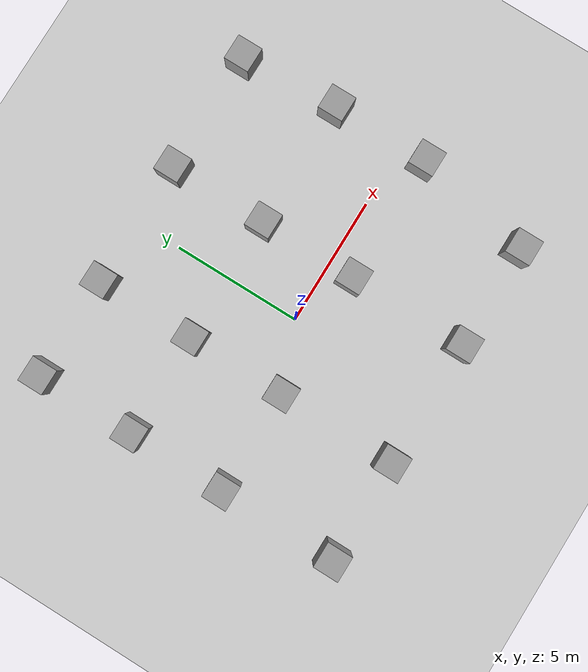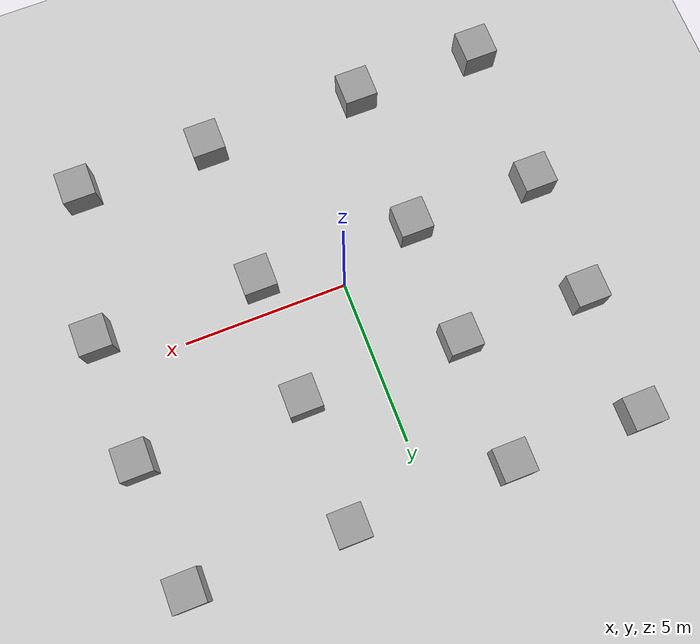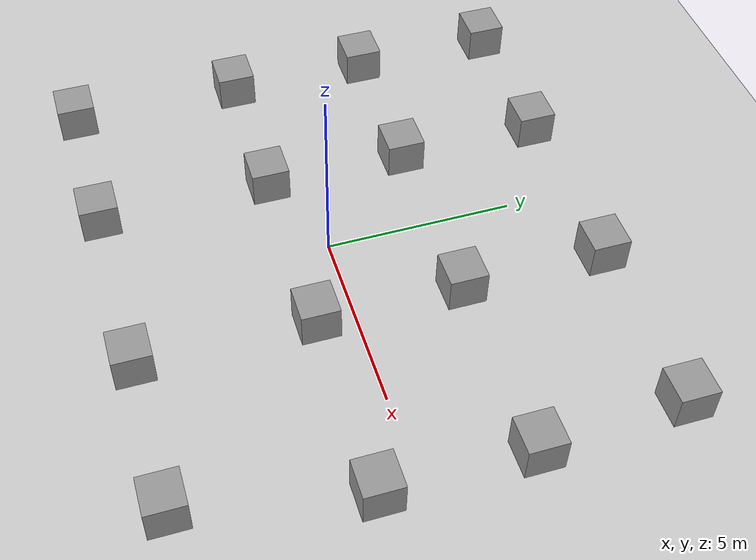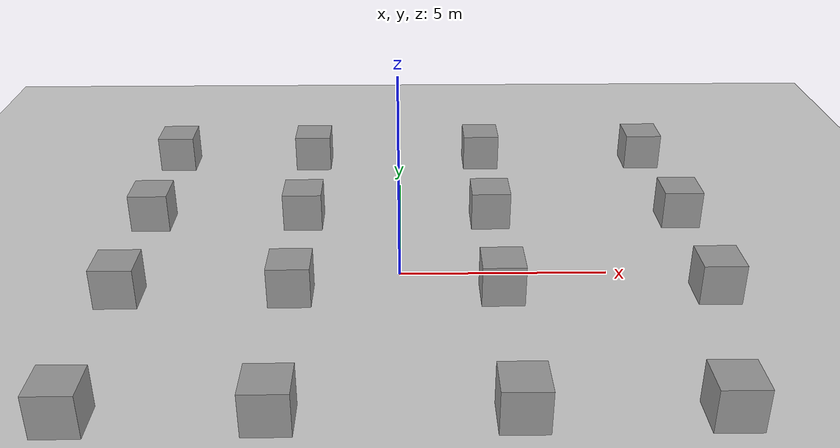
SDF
<sdf version="1.6">
 <world name="default">
  <light name="sun" type="directional">
   <pose>0 0 10 0 -0 0</pose>
   <diffuse>0.8 0.8 0.8 1</diffuse>
   <specular>0.2 0.2 0.2 1</specular>
   <attenuation>
    <range>1000</range>
    <constant>0.9</constant>
    <linear>0.01</linear>
    <quadratic>0.001</quadratic>
   </attenuation>
   <direction>-0.5 0.1 -0.9</direction>
  </light>
  <model name="ground_plane">
   <static>1</static>
   <link name="link">
    <collision name="collision">
     <geometry><plane><normal>0 0 1</normal><size>100 100</size></plane></geometry>
     <surface><friction><ode><mu>100</mu><mu2>50</mu2></ode></friction></surface>
    </collision>
    <visual name="visual">
     <cast_shadows>0</cast_shadows>
     <geometry><plane><normal>0 0 1</normal><size>100 100</size></plane></geometry>
     <material>
      <script><uri>file://media/materials/scripts/gazebo.material</uri><name>Gazebo/Grey</name></script>
     </material>
    </visual>
   </link>
  </model>
  <gravity>0 0 -9.8</gravity>
  <magnetic_field>6e-06 2.3e-05 -4.2e-05</magnetic_field>
  <atmosphere type="adiabatic"/>
  <physics name="default_physics" default="0" type="ode">
   <max_step_size>0.001</max_step_size>
   <real_time_factor>1</real_time_factor>
   <real_time_update_rate>1000</real_time_update_rate>
  </physics>
  <scene><ambient>0.4 0.4 0.4 1</ambient><background>0.7 0.7 0.7 1</background><shadows>1</shadows></scene>
  <spherical_coordinates>
   <surface_model>EARTH_WGS84</surface_model>
   <latitude_deg>0</latitude_deg>
   <longitude_deg>0</longitude_deg>
   <elevation>0</elevation>
   <heading_deg>0</heading_deg>
  </spherical_coordinates>
  <model name="unit_box_0_0">
   <pose>-6.48676 -5.56657 0.5 0 -0 0</pose>
   <link name="link">
    <inertial>
     <mass>1</mass>
     <inertia>
      <ixx>0.166667</ixx>
      <ixy>0</ixy>
      <ixz>0</ixz>
      <iyy>0.166667</iyy>
      <iyz>0</iyz>
      <izz>0.166667</izz>
     </inertia>
    </inertial>
    <collision name="collision"><geometry><box><size>1 1 1</size></box></geometry></collision>
    <visual name="visual">
     <geometry><box><size>1 1 1</size></box></geometry>
     <material>
      <script><name>Gazebo/Grey</name><uri>file://media/materials/scripts/gazebo.material</uri></script>
     </material>
    </visual>
   </link>
  </model>
  <model name="unit_box_0_0_clone">
   <pose>-2.51723 -5.56657 0.5 0 -0 0</pose>
   <link name="link">
    <inertial>
     <mass>1</mass>
     <inertia>
      <ixx>0.166667</ixx>
      <ixy>0</ixy>
      <ixz>0</ixz>
      <iyy>0.166667</iyy>
      <iyz>0</iyz>
      <izz>0.166667</izz>
     </inertia>
    </inertial>
    <collision name="collision"><geometry><box><size>1 1 1</size></box></geometry></collision>
    <visual name="visual">
     <geometry><box><size>1 1 1</size></box></geometry>
     <material>
      <script><name>Gazebo/Grey</name><uri>file://media/materials/scripts/gazebo.material</uri></script>
     </material>
    </visual>
   </link>
  </model>
  <model name="unit_box_0_0_clone_clone">
   <pose>2.38292 -5.56657 0.5 0 -0 0</pose>
   <link name="link">
    <inertial>
     <mass>1</mass>
     <inertia>
      <ixx>0.166667</ixx>
      <ixy>0</ixy>
      <ixz>0</ixz>
      <iyy>0.166667</iyy>
      <iyz>0</iyz>
      <izz>0.166667</izz>
     </inertia>
    </inertial>
    <collision name="collision"><geometry><box><size>1 1 1</size></box></geometry></collision>
    <visual name="visual">
     <geometry><box><size>1 1 1</size></box></geometry>
     <material>
      <script><name>Gazebo/Grey</name><uri>file://media/materials/scripts/gazebo.material</uri></script>
     </material>
    </visual>
   </link>
  </model>
  <model name="unit_box_0_0_clone_clone_0">
   <pose>6.4547 -5.56657 0.5 0 -0 0</pose>
   <link name="link">
    <inertial>
     <mass>1</mass>
     <inertia>
      <ixx>0.166667</ixx>
      <ixy>0</ixy>
      <ixz>0</ixz>
      <iyy>0.166667</iyy>
      <iyz>0</iyz>
      <izz>0.166667</izz>
     </inertia>
    </inertial>
    <collision name="collision"><geometry><box><size>1 1 1</size></box></geometry></collision>
    <visual name="visual">
     <geometry><box><size>1 1 1</size></box></geometry>
     <material>
      <script><name>Gazebo/Grey</name><uri>file://media/materials/scripts/gazebo.material</uri></script>
     </material>
    </visual>
   </link>
  </model>
  <model name="unit_box_0_0_clone_clone_1">
   <pose>-6.48676 -0.989112 0.5 0 -0 0</pose>
   <link name="link">
    <inertial>
     <mass>1</mass>
     <inertia>
      <ixx>0.166667</ixx>
      <ixy>0</ixy>
      <ixz>0</ixz>
      <iyy>0.166667</iyy>
      <iyz>0</iyz>
      <izz>0.166667</izz>
     </inertia>
    </inertial>
    <collision name="collision"><geometry><box><size>1 1 1</size></box></geometry></collision>
    <visual name="visual">
     <geometry><box><size>1 1 1</size></box></geometry>
     <material>
      <script><name>Gazebo/Grey</name><uri>file://media/materials/scripts/gazebo.material</uri></script>
     </material>
    </visual>
   </link>
  </model>
  <model name="unit_box_0_0_clone_clone_2">
   <pose>-6.48676 2.80557 0.5 0 -0 0</pose>
   <link name="link">
    <inertial>
     <mass>1</mass>
     <inertia>
      <ixx>0.166667</ixx>
      <ixy>0</ixy>
      <ixz>0</ixz>
      <iyy>0.166667</iyy>
      <iyz>0</iyz>
      <izz>0.166667</izz>
     </inertia>
    </inertial>
    <collision name="collision"><geometry><box><size>1 1 1</size></box></geometry></collision>
    <visual name="visual">
     <geometry><box><size>1 1 1</size></box></geometry>
     <material>
      <script><name>Gazebo/Grey</name><uri>file://media/materials/scripts/gazebo.material</uri></script>
     </material>
    </visual>
   </link>
  </model>
  <model name="unit_box_0_0_clone_clone_3">
   <pose>-6.48676 6.62752 0.5 0 -0 0</pose>
   <link name="link">
    <inertial>
     <mass>1</mass>
     <inertia>
      <ixx>0.166667</ixx>
      <ixy>0</ixy>
      <ixz>0</ixz>
      <iyy>0.166667</iyy>
      <iyz>0</iyz>
      <izz>0.166667</izz>
     </inertia>
    </inertial>
    <collision name="collision"><geometry><box><size>1 1 1</size></box></geometry></collision>
    <visual name="visual">
     <geometry><box><size>1 1 1</size></box></geometry>
     <material>
      <script><name>Gazebo/Grey</name><uri>file://media/materials/scripts/gazebo.material</uri></script>
     </material>
    </visual>
   </link>
  </model>
  <model name="unit_box_0_0_clone_clone_4">
   <pose>-2.51723 -0.989112 0.5 0 -0 0</pose>
   <link name="link">
    <inertial>
     <mass>1</mass>
     <inertia>
      <ixx>0.166667</ixx>
      <ixy>0</ixy>
      <ixz>0</ixz>
      <iyy>0.166667</iyy>
      <iyz>0</iyz>
      <izz>0.166667</izz>
     </inertia>
    </inertial>
    <collision name="collision"><geometry><box><size>1 1 1</size></box></geometry></collision>
    <visual name="visual">
     <geometry><box><size>1 1 1</size></box></geometry>
     <material>
      <script><name>Gazebo/Grey</name><uri>file://media/materials/scripts/gazebo.material</uri></script>
     </material>
    </visual>
   </link>
  </model>
  <model name="unit_box_0_0_clone_clone_5">
   <pose>-2.51723 2.80557 0.5 0 -0 0</pose>
   <link name="link">
    <inertial>
     <mass>1</mass>
     <inertia>
      <ixx>0.166667</ixx>
      <ixy>0</ixy>
      <ixz>0</ixz>
      <iyy>0.166667</iyy>
      <iyz>0</iyz>
      <izz>0.166667</izz>
     </inertia>
    </inertial>
    <collision name="collision"><geometry><box><size>1 1 1</size></box></geometry></collision>
    <visual name="visual">
     <geometry><box><size>1 1 1</size></box></geometry>
     <material>
      <script><name>Gazebo/Grey</name><uri>file://media/materials/scripts/gazebo.material</uri></script>
     </material>
    </visual>
   </link>
  </model>
  <model name="unit_box_0_0_clone_clone_6">
   <pose>-2.51723 6.62752 0.5 0 -0 0</pose>
   <link name="link">
    <inertial>
     <mass>1</mass>
     <inertia>
      <ixx>0.166667</ixx>
      <ixy>0</ixy>
      <ixz>0</ixz>
      <iyy>0.166667</iyy>
      <iyz>0</iyz>
      <izz>0.166667</izz>
     </inertia>
    </inertial>
    <collision name="collision"><geometry><box><size>1 1 1</size></box></geometry></collision>
    <visual name="visual">
     <geometry><box><size>1 1 1</size></box></geometry>
     <material>
      <script><name>Gazebo/Grey</name><uri>file://media/materials/scripts/gazebo.material</uri></script>
     </material>
    </visual>
   </link>
  </model>
  <model name="unit_box_0_0_clone_clone_7">
   <pose>2.38292 -0.989112 0.5 0 -0 0</pose>
   <link name="link">
    <inertial>
     <mass>1</mass>
     <inertia>
      <ixx>0.166667</ixx>
      <ixy>0</ixy>
      <ixz>0</ixz>
      <iyy>0.166667</iyy>
      <iyz>0</iyz>
      <izz>0.166667</izz>
     </inertia>
    </inertial>
    <collision name="collision"><geometry><box><size>1 1 1</size></box></geometry></collision>
    <visual name="visual">
     <geometry><box><size>1 1 1</size></box></geometry>
     <material>
      <script><name>Gazebo/Grey</name><uri>file://media/materials/scripts/gazebo.material</uri></script>
     </material>
    </visual>
   </link>
  </model>
  <model name="unit_box_0_0_clone_clone_8">
   <pose>2.38292 2.80557 0.5 0 -0 0</pose>
   <link name="link">
    <inertial>
     <mass>1</mass>
     <inertia>
      <ixx>0.166667</ixx>
      <ixy>0</ixy>
      <ixz>0</ixz>
      <iyy>0.166667</iyy>
      <iyz>0</iyz>
      <izz>0.166667</izz>
     </inertia>
    </inertial>
    <collision name="collision"><geometry><box><size>1 1 1</size></box></geometry></collision>
    <visual name="visual">
     <geometry><box><size>1 1 1</size></box></geometry>
     <material>
      <script><name>Gazebo/Grey</name><uri>file://media/materials/scripts/gazebo.material</uri></script>
     </material>
    </visual>
   </link>
  </model>
  <model name="unit_box_0_0_clone_clone_9">
   <pose>2.38292 6.62752 0.5 0 -0 0</pose>
   <link name="link">
    <inertial>
     <mass>1</mass>
     <inertia>
      <ixx>0.166667</ixx>
      <ixy>0</ixy>
      <ixz>0</ixz>
      <iyy>0.166667</iyy>
      <iyz>0</iyz>
      <izz>0.166667</izz>
     </inertia>
    </inertial>
    <collision name="collision"><geometry><box><size>1 1 1</size></box></geometry></collision>
    <visual name="visual">
     <geometry><box><size>1 1 1</size></box></geometry>
     <material>
      <script><name>Gazebo/Grey</name><uri>file://media/materials/scripts/gazebo.material</uri></script>
     </material>
    </visual>
   </link>
  </model>
  <model name="unit_box_0_0_clone_clone_10">
   <pose>7.37965 -0.989112 0.5 0 -0 0</pose>
   <link name="link">
    <inertial>
     <mass>1</mass>
     <inertia>
      <ixx>0.166667</ixx>
      <ixy>0</ixy>
      <ixz>0</ixz>
      <iyy>0.166667</iyy>
      <iyz>0</iyz>
      <izz>0.166667</izz>
     </inertia>
    </inertial>
    <collision name="collision"><geometry><box><size>1 1 1</size></box></geometry></collision>
    <visual name="visual">
     <geometry><box><size>1 1 1</size></box></geometry>
     <material>
      <script><name>Gazebo/Grey</name><uri>file://media/materials/scripts/gazebo.material</uri></script>
     </material>
    </visual>
   </link>
  </model>
  <model name="unit_box_0_0_clone_clone_11">
   <pose>7.37965 2.80557 0.5 0 -0 0</pose>
   <link name="link">
    <inertial>
     <mass>1</mass>
     <inertia>
      <ixx>0.166667</ixx>
      <ixy>0</ixy>
      <ixz>0</ixz>
      <iyy>0.166667</iyy>
      <iyz>0</iyz>
      <izz>0.166667</izz>
     </inertia>
    </inertial>
    <collision name="collision"><geometry><box><size>1 1 1</size></box></geometry></collision>
    <visual name="visual">
     <geometry><box><size>1 1 1</size></box></geometry>
     <material>
      <script><name>Gazebo/Grey</name><uri>file://media/materials/scripts/gazebo.material</uri></script>
     </material>
    </visual>
   </link>
  </model>
  <model name="unit_box_0_0_clone_clone_12">
   <pose>7.12863 6.62752 0.5 0 -0 0</pose>
   <link name="link">
    <inertial>
     <mass>1</mass>
     <inertia>
      <ixx>0.166667</ixx>
      <ixy>0</ixy>
      <ixz>0</ixz>
      <iyy>0.166667</iyy>
      <iyz>0</iyz>
      <izz>0.166667</izz>
     </inertia>
    </inertial>
    <collision name="collision"><geometry><box><size>1 1 1</size></box></geometry></collision>
    <visual name="visual">
     <geometry><box><size>1 1 1</size></box></geometry>
     <material>
      <script><name>Gazebo/Grey</name><uri>file://media/materials/scripts/gazebo.material</uri></script>
     </material>
    </visual>
   </link>
  </model>
 </world>
</sdf>
